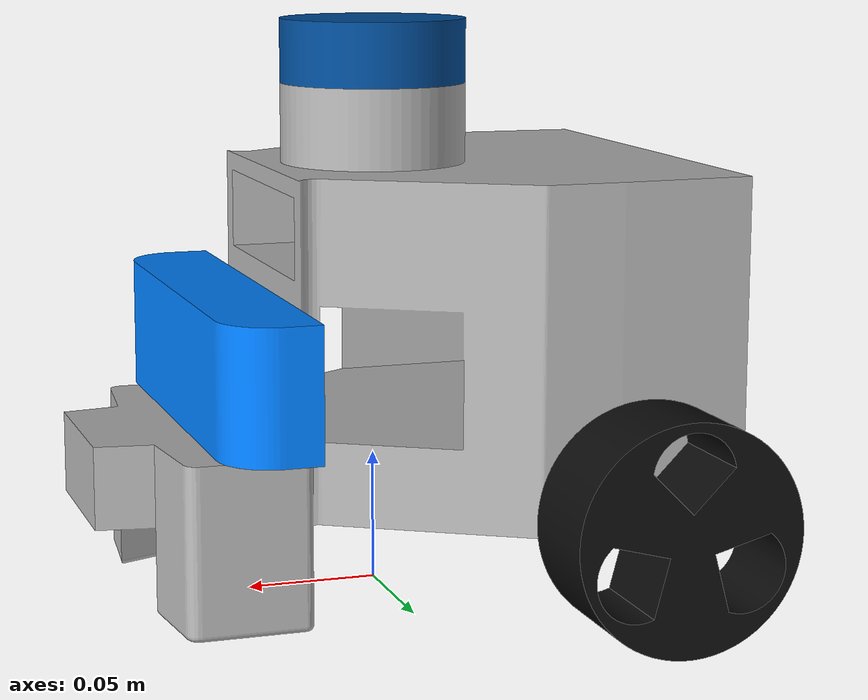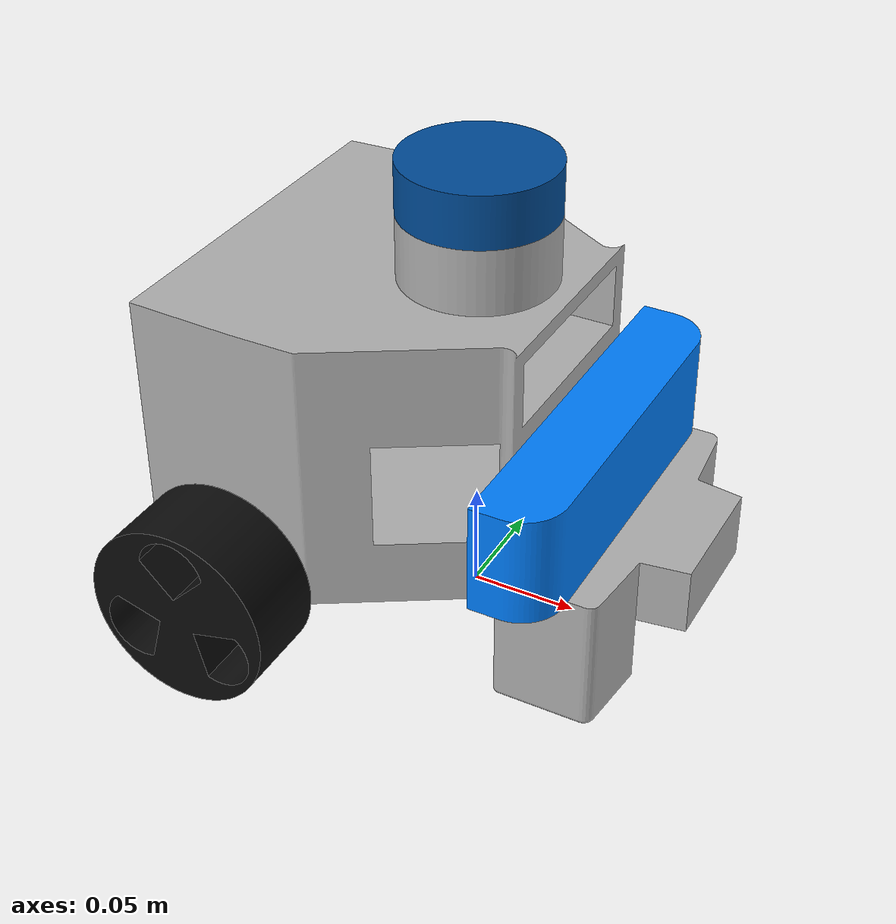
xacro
<?xml version="1.0"?>

<robot name="max" xmlns:xacro="http://www.ros.org/wiki/xacro">

    <xacro:arg name="is_sim" default="true"/>
    <xacro:arg name="is_ignition" default="false"/>

    <xacro:include filename="$(find max_description)/urdf/materials.xacro" />
    <xacro:include filename="$(find max_description)/urdf/max.gazebo.xacro" />
    <xacro:include filename="$(find max_description)/urdf/trans.xacro" />
    <xacro:include filename="$(find max_description)/urdf/ros2_control.xacro" />

    <link name="base_footprint"/>

    <link name="base_link">
        <inertial>
            <origin xyz="-0.02395632727900399 -2.01772150977478e-07 0.09083712403458968" rpy="0 0 0"/>
            <mass value="2.2280671864878805"/>
            <inertia ixx="0.010988" iyy="0.012735" izz="0.013502" ixy="0.0" iyz="0.0" ixz="0.0016"/>
        </inertial>
        <visual>
            <origin xyz="0 0 -0.0425" rpy="0 0 0"/>
            <geometry>
            <mesh filename="file://$(find max_description)/meshes/base_link.stl" scale="0.001 0.001 0.001"/>
            </geometry>
            <material name="silver"/>
        </visual>
        <collision>
            <origin xyz="0 0 0" rpy="0 0 0"/>
            <geometry>
            <mesh filename="file://$(find max_description)/meshes/base_link.stl" scale="0.001 0.001 0.001"/>
            </geometry>
        </collision>
    </link>

    <link name="rr_wheel_link">
        <inertial>
            <origin xyz="-2.2343238370581275e-15 -0.015512778351276846 1.3877787807814457e-17" rpy="0 0 0"/>
            <mass value="0.14404511942595016"/>
            <inertia ixx="8.7e-05" iyy="0.000137" izz="8.7e-05" ixy="0.0" iyz="0.0" ixz="0.0"/>
        </inertial>
        <visual>
            <origin xyz="0.075 0.095 -0.0425" rpy="0 0 0"/>
            <geometry>
            <mesh filename="file://$(find max_description)/meshes/rr_wheel_link.stl" scale="0.001 0.001 0.001"/>
            </geometry>
            <material name="matte_black"/>
        </visual>
        <collision>
            <origin xyz="0.075 0.095 -0.0425" rpy="0 0 0"/>
            <geometry>
            <mesh filename="file://$(find max_description)/meshes/rr_wheel_link.stl" scale="0.001 0.001 0.001"/>
            </geometry>
        </collision>
    </link>

    <link name="rl_wheel_link">
        <inertial>
            <origin xyz="-2.220446049250313e-16 0.015512778351276832 6.245004513516506e-17" rpy="0 0 0"/>
            <mass value="0.1440451194259502"/>
            <inertia ixx="8.7e-05" iyy="0.000137" izz="8.7e-05" ixy="-0.0" iyz="0.0" ixz="0.0"/>
        </inertial>
        <visual>
            <origin xyz="0.075 -0.095 -0.0425" rpy="0 0 0"/>
            <geometry>
            <mesh filename="file://$(find max_description)/meshes/rl_wheel_link.stl" scale="0.001 0.001 0.001"/>
            </geometry>
            <material name="matte_black"/>
        </visual>
        <collision>
            <origin xyz="0.075 -0.095 -0.0425" rpy="0 0 0"/>
            <geometry>
            <mesh filename="file://$(find max_description)/meshes/rl_wheel_link.stl" scale="0.001 0.001 0.001"/>
            </geometry>
        </collision>
    </link>

    <link name="lidar_link">
        <inertial>
            <origin xyz="-6.154361288395009e-18 -4.3080529018765064e-17 0.012000000000000038" rpy="0 0 0"/>
            <mass value="0.09790459345647239"/>
            <inertia ixx="3.5e-05" iyy="3.5e-05" izz="6e-05" ixy="0.0" iyz="0.0" ixz="0.0"/>
        </inertial>
        <visual>
            <origin xyz="0.0 0.0 -0.1935" rpy="0 0 0"/>
            <geometry>
            <mesh filename="file://$(find max_description)/meshes/lidar_link.stl" scale="0.001 0.001 0.001"/>
            </geometry>
            <material name="tech_blue"/>
        </visual>
        <collision>
            <origin xyz="0.0 0.0 -0.1935" rpy="0 0 0"/>
            <geometry>
            <mesh filename="file://$(find max_description)/meshes/lidar_link.stl" scale="0.001 0.001 0.001"/>
            </geometry>
        </collision>
    </link>

    <link name="camera_link">
        <inertial>
            <origin xyz="0.013632302340116711 -8.413408858487514e-17 8.326672684688674e-17" rpy="0 0 0"/>
            <mass value="0.30616096974630597"/>
            <inertia ixx="0.000806" iyy="9.3e-05" izz="0.000771" ixy="-0.0" iyz="-0.0" ixz="0.0"/>
        </inertial>
        <visual>
            <origin xyz="-0.046567 0.005 -0.0925" rpy="0 0 0"/>
            <geometry>
            <mesh filename="file://$(find max_description)/meshes/camera_link.stl" scale="0.001 0.001 0.001"/>
            </geometry>
            <material name="camera_accent"/>
        </visual>
        <collision>
            <origin xyz="-0.046567 0.005 -0.0925" rpy="0 0 0"/>
            <geometry>
            <mesh filename="file://$(find max_description)/meshes/camera_link.stl" scale="0.001 0.001 0.001"/>
            </geometry>
        </collision>
    </link>

    <link name="fr_roller_wheel">
        <inertial>
            <origin xyz="1.3877787807814457e-17 6.938893903907228e-18 -5.204170427930421e-18" rpy="0 0 0"/>
            <mass value="0.01387209506100743"/>
            <inertia ixx="0.0" iyy="0.0" izz="0.0" ixy="0.0" iyz="0.0" ixz="0.0"/>
        </inertial>
        <visual>
            <origin xyz="-0.07 0.055 -0.0075" rpy="0 0 0"/>
            <geometry>
            <mesh filename="file://$(find max_description)/meshes/fr_roller_wheel.stl" scale="0.001 0.001 0.001"/>
            </geometry>
            <material name="matte_black"/>
        </visual>
        <collision>
            <origin xyz="-0.07 0.055 -0.0075" rpy="0 0 0"/>
            <geometry>
            <mesh filename="file://$(find max_description)/meshes/fr_roller_wheel.stl" scale="0.001 0.001 0.001"/>
            </geometry>
        </collision>
    </link>

    <link name="fl_roller_wheel">
        <inertial>
            <origin xyz="1.3877787807814457e-17 -6.938893903907228e-18 1.9949319973733282e-17" rpy="0 0 0"/>
            <mass value="0.01387209506100743"/>
            <inertia ixx="0.0" iyy="0.0" izz="0.0" ixy="0.0" iyz="-0.0" ixz="0.0"/>
        </inertial>
        <visual>
            <origin xyz="-0.07 -0.055 -0.0075" rpy="0 0 0"/>
            <geometry>
            <mesh filename="file://$(find max_description)/meshes/fl_roller_wheel.stl" scale="0.001 0.001 0.001"/>
            </geometry>
            <material name="matte_black"/>
        </visual>
        <collision>
            <origin xyz="-0.07 -0.055 -0.0075" rpy="0 0 0"/>
            <geometry>
            <mesh filename="file://$(find max_description)/meshes/fl_roller_wheel.stl" scale="0.001 0.001 0.001"/>
            </geometry>
        </collision>
    </link>

    <joint name="base_joint" type="fixed">
        <parent link="base_footprint"/>
        <child link="base_link"/>
        <origin xyz="0 0 0.0425" rpy="0 0 0"/>
    </joint>

    <joint name="rr_joint" type="continuous">
        <origin xyz="-0.075 -0.095 0" rpy="0 0 0"/>
        <parent link="base_link"/>
        <child link="rr_wheel_link"/>
        <axis xyz="0.0 1.0 0.0"/>
    </joint>

    <joint name="rl_joint" type="continuous">
        <origin xyz="-0.075 0.095 0" rpy="0 0 0"/>
        <parent link="base_link"/>
        <child link="rl_wheel_link"/>
        <axis xyz="0.0 1.0 0.0"/>
    </joint>

    <joint name="lidar_joint" type="fixed">
        <origin xyz="0.0 0.0 0.151" rpy="0 0 0"/>
        <parent link="base_link"/>
        <child link="lidar_link"/>
    </joint>

    <joint name="camera_joint" type="fixed">
        <origin xyz="0.046567 -0.005 0.05" rpy="0 0 0"/>
        <parent link="base_link"/>
        <child link="camera_link"/>
    </joint>

    <joint name="fr_joint" type="fixed">
        <origin xyz="0.07 -0.055 -0.035" rpy="0 0 0"/>
        <parent link="base_link"/>
        <child link="fr_roller_wheel"/>
    </joint>

    <joint name="fl_joint" type="fixed">
        <origin xyz="0.07 0.055 -0.035" rpy="0 0 0"/>
        <parent link="base_link"/>
        <child link="fl_roller_wheel"/>
    </joint>
</robot>

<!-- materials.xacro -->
<robot name="max" xmlns:xacro="http://www.ros.org/wiki/xacro" >

    <!-- Base body -->
    <material name="silver">
        <color rgba="0.700 0.700 0.700 1.000"/>
    </material>

    <!-- Wheels -->
    <material name="matte_black">
        <color rgba="0.05 0.05 0.05 1.0"/>
    </material>

    <!-- Lidar -->
    <material name="tech_blue">
        <color rgba="0.0 0.3 0.6 1.0"/>
    </material>

    <!-- Camera -->
    <material name="camera_accent">
        <color rgba="0.0 0.5 1.0 1.0"/>
    </material>

</robot>

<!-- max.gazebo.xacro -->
<robot name="max" xmlns:xacro="http://www.ros.org/wiki/xacro" >

  <xacro:property name="wheel_color" value="Gazebo/Black" />
  <xacro:property name="lidar_color" value="Gazebo/Blue" />
  <xacro:property name="camera_color" value="Gazebo/Blue" />

  <gazebo reference="fr_roller_wheel">
    <material>${wheel_color}</material>
    <mu1>0.1</mu1>
    <mu2>0.1</mu2>
    <kp>1000000.0</kp>
    <kd>100.0</kd>
    <minDepth>0.001</minDepth>
    <maxVel>1.0</maxVel>
  </gazebo>

  <gazebo reference="fl_roller_wheel">
    <material>${wheel_color}</material>
    <mu1>0.1</mu1>
    <mu2>0.1</mu2>
    <kp>1000000.0</kp>
    <kd>100.0</kd>
    <minDepth>0.001</minDepth>
    <maxVel>1.0</maxVel>
  </gazebo>

  <gazebo reference="rl_wheel_link">
    <material>${wheel_color}</material>
    <mu1>1.5</mu1>
    <mu2>0.5</mu2>
    <kp>100000.0</kp>
    <kd>10.0</kd>
    <minDepth>0.001</minDepth>
    <maxVel>0.5</maxVel>
    <fdir1>1 0 0</fdir1>
  </gazebo>

  <gazebo reference="rr_wheel_link">
    <material>${wheel_color}</material>
    <mu1>1.5</mu1>
    <mu2>0.5</mu2>
    <kp>100000.0</kp>
    <kd>10.0</kd>
    <minDepth>0.001</minDepth>
    <maxVel>0.5</maxVel>
    <fdir1>1 0 0</fdir1>
  </gazebo>

  <gazebo reference="lidar_link">
    <material>${lidar_color}</material>
    <xacro:if value="$(arg is_ignition)">
      <sensor name="lidar" type="gpu_lidar">
        <always_on>true</always_on>
        <visualize>true</visualize>
        <topic>scan</topic>
        <update_rate>5</update_rate>
        <gz_frame_id>lidar_link</gz_frame_id>
        <lidar>
          <scan>
            <horizontal>
              <samples>360</samples>
              <resolution>1.00000</resolution>
              <min_angle>0.000000</min_angle>
              <max_angle>6.280000</max_angle>
            </horizontal>
          </scan>
          <range>
            <min>0.120000</min>
            <max>12.0</max>
            <resolution>0.02</resolution>
          </range>
          <noise>
            <type>gaussian</type>
            <mean>0.0</mean>
            <stddev>0.01</stddev>
          </noise>
        </lidar>
      </sensor>
    </xacro:if>

    <xacro:unless value="$(arg is_ignition)">
      <sensor name="lidar" type="ray">
        <always_on>true</always_on>
        <visualize>true</visualize>
        <update_rate>5.0</update_rate>
        <ray>
          <scan>
            <horizontal>
              <samples>360</samples>
              <resolution>1.0</resolution>
              <min_angle>0.0</min_angle>
              <max_angle>6.28</max_angle>
            </horizontal>
          </scan>
          <range>
            <min>0.15</min>
            <max>12.0</max>
            <resolution>0.02</resolution>
          </range>
          <noise>
            <type>gaussian</type>
            <mean>0.0</mean>
            <stddev>0.01</stddev>
          </noise>
        </ray>
        <plugin name="scan" filename="libgazebo_ros_ray_sensor.so">
          <ros>
            <remapping>~/out:=scan</remapping>
          </ros>
          <output_type>sensor_msgs/LaserScan</output_type>
          <frame_name>lidar_link</frame_name>
        </plugin>
      </sensor>
    </xacro:unless>
  </gazebo>

  <gazebo reference="camera_link">
    <material>${camera_color}</material>
  </gazebo>

</robot>
